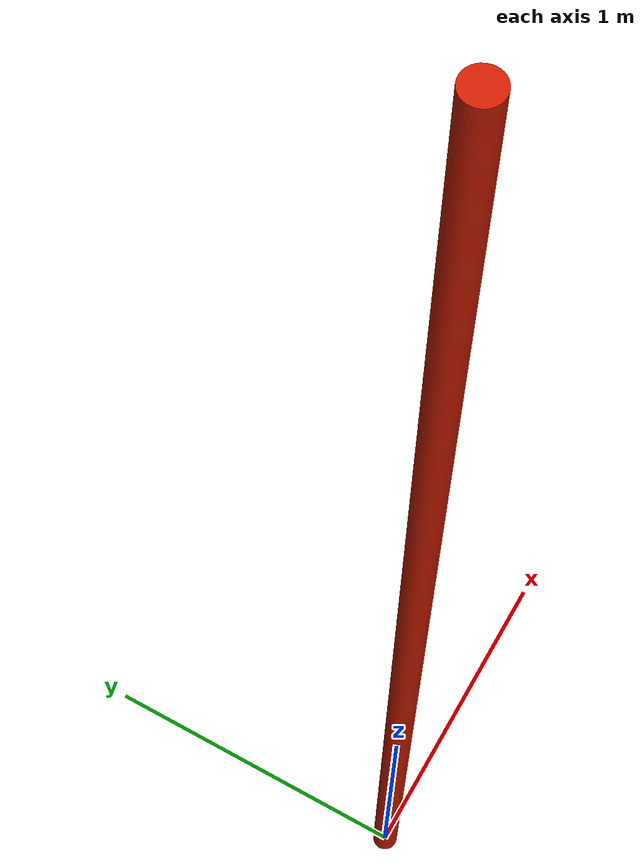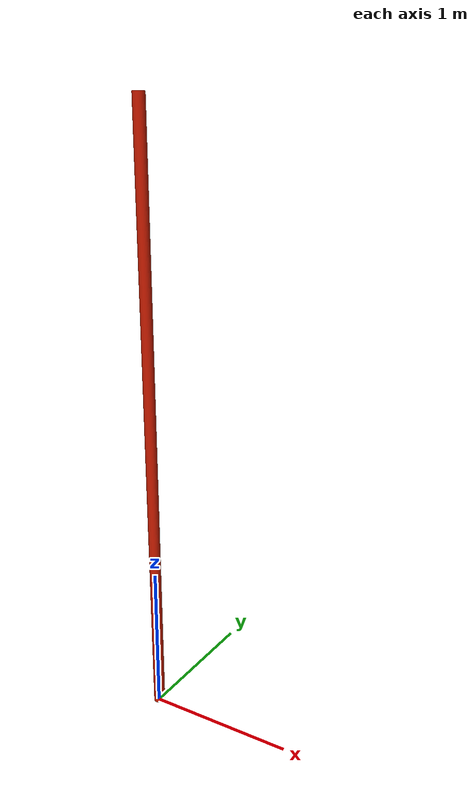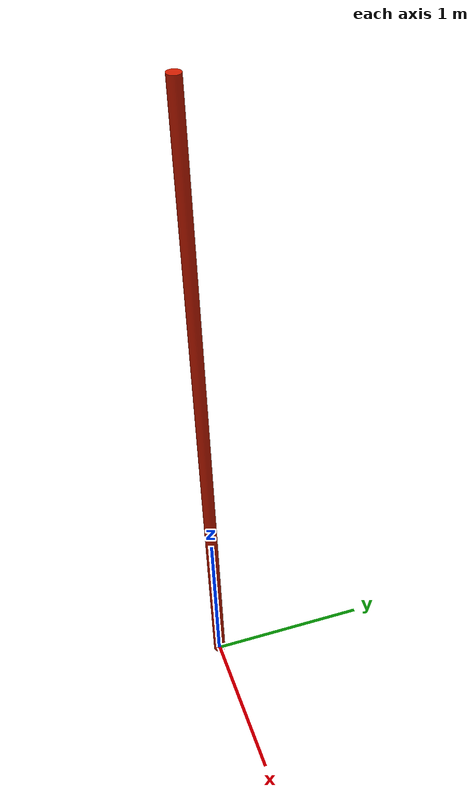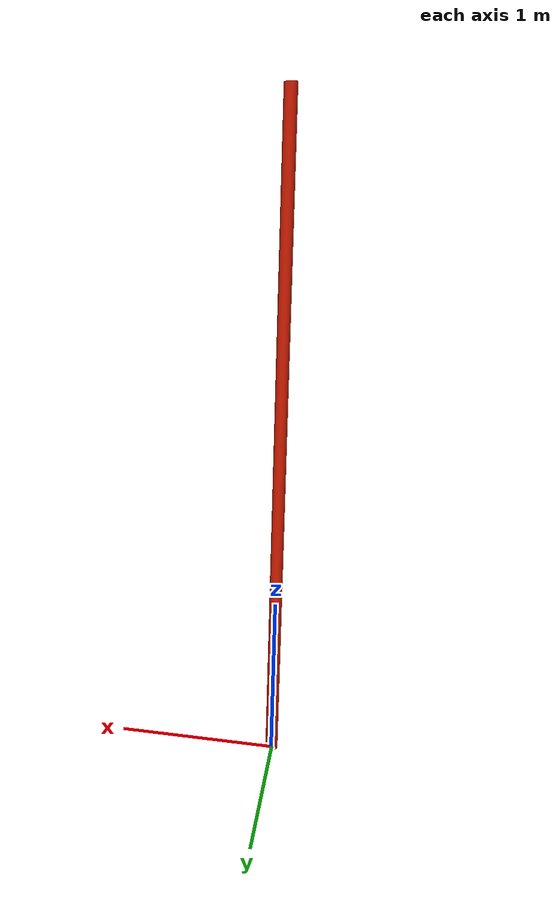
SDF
<?xml version='1.0'?>
<sdf version='1.0'>

  <model name='New Pole'>
    <pose>0 0 0 0 0 0</pose>
    <self_collide> 0 </self_collide>
    <static> 1</static>

    <link name='board'>
      <pose>0 0 0 0 0 0</pose>
      <visual name='main'>
        <geometry>
            <mesh><uri>file://qualification_pole/Post1.dae</uri></mesh>
        </geometry>
      </visual>
      <collision name='main'>
        <pose>0 0 0 0 0 0</pose>
        <geometry>
            <mesh><uri>file://qualification_pole/Post1.dae</uri></mesh>
        </geometry>
      </collision>
    </link>

  </model>
</sdf>
